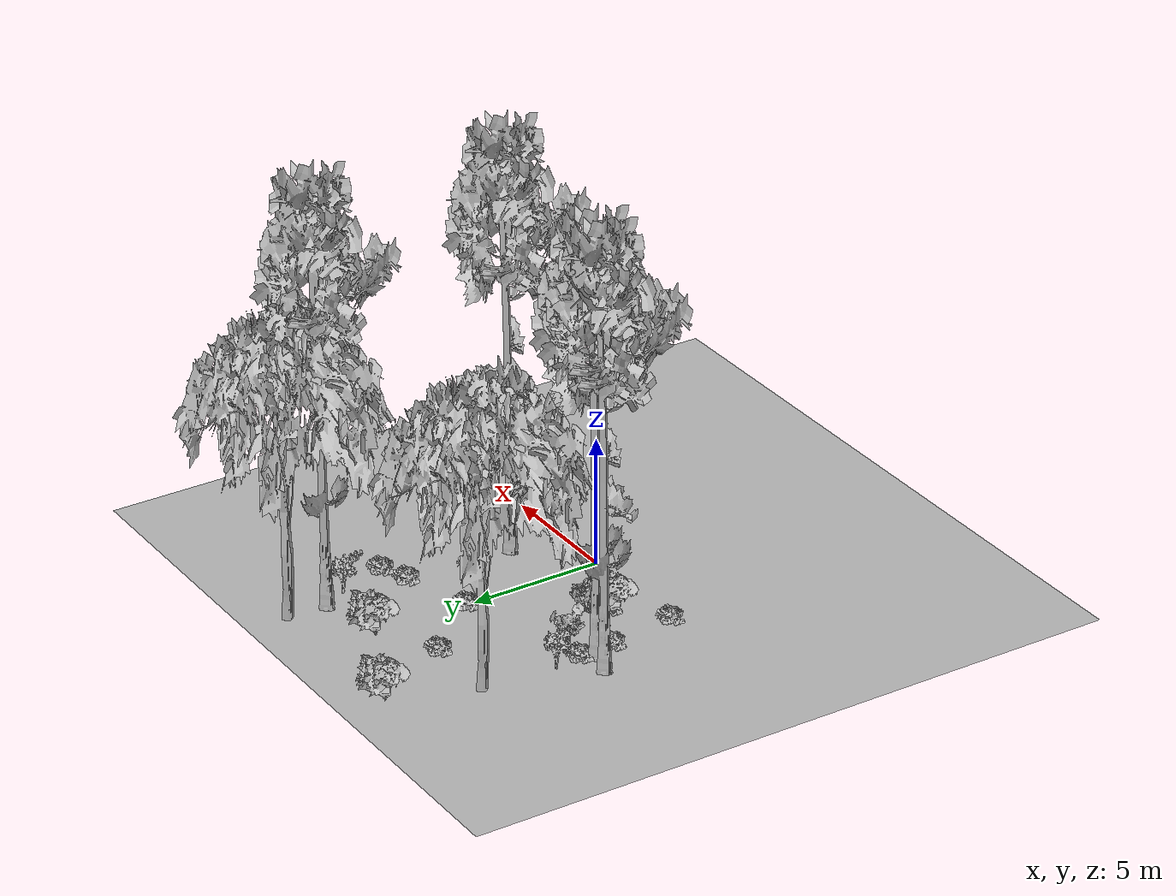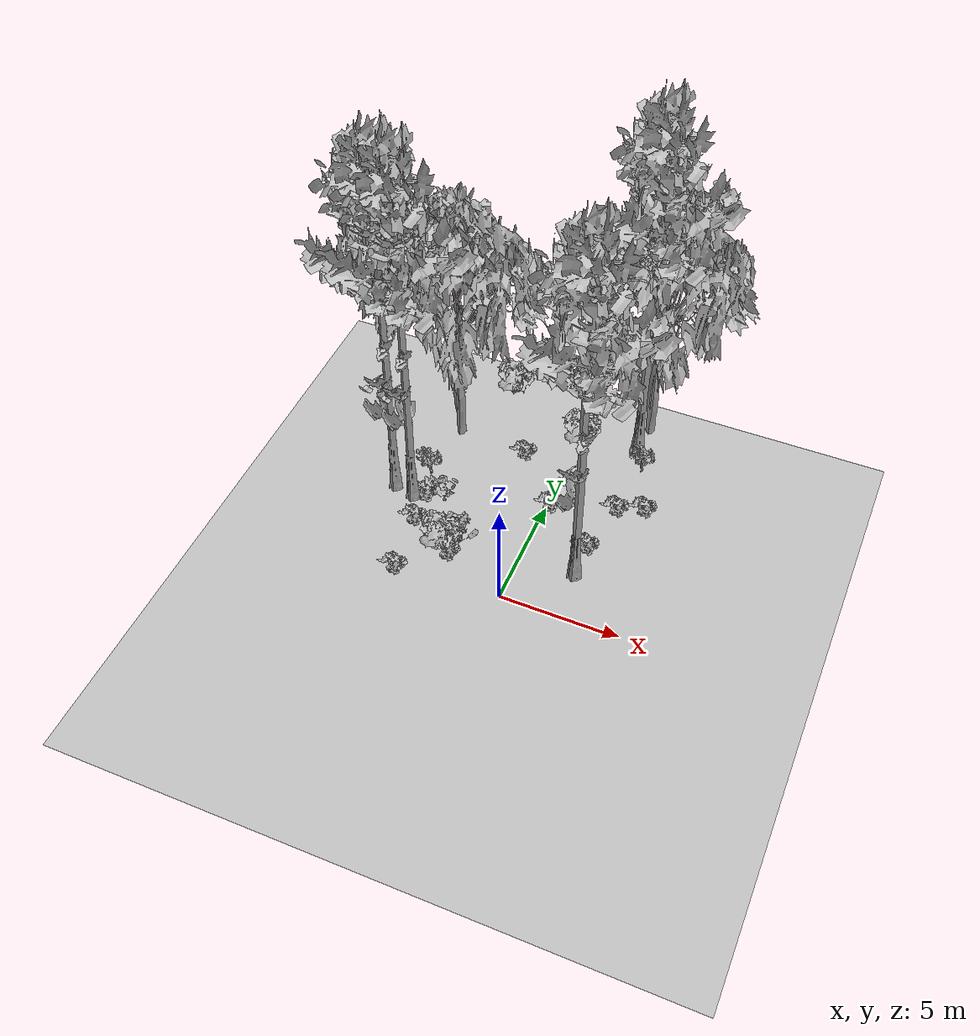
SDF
<sdf version="1.7">
 <world name="default">
  <model name="ground_plane">
   <static>1</static>
   <link name="link">
    <collision name="collision">
     <pose>-50 0 0 0 -0 0</pose>
     <geometry><plane><normal>0 0 1</normal><size>80 80</size></plane></geometry>
     <surface><contact><ode><min_depth>0.01</min_depth><max_vel>0</max_vel></ode></contact></surface>
    </collision>
    <visual name="grass">
     <cast_shadows>0</cast_shadows>
     <geometry>
      <mesh>
       <scale>0.46714285714285714 0.46714285714285714 0.1</scale>
       <uri>file://grass_plane/meshes/grass_plane.dae</uri>
      </mesh>
     </geometry>
    </visual>
   </link>
  </model>
  <model name="Tree 40">
   <static>1</static>
   <pose>2.4844575422796 9.515615759375045 0 1.57079 -0 0</pose>
   <link name="link">
    <collision name="collision">
     <geometry><mesh><scale>3.5 5 3.5</scale><uri>model://tree_9/meshes/tree_9.obj</uri></mesh></geometry>
    </collision>
    <visual name="visual">
     <geometry><mesh><scale>3.5 5 3.5</scale><uri>model://tree_9/meshes/tree_9.obj</uri></mesh></geometry>
    </visual>
   </link>
  </model>
  <model name="Tree 90">
   <static>1</static>
   <pose>-6.290884078868302 3.689185958182904 0 1.57079 -0 0</pose>
   <link name="link">
    <collision name="collision">
     <geometry><mesh><scale>3.5 5 3.5</scale><uri>model://tree_9/meshes/tree_9.obj</uri></mesh></geometry>
    </collision>
    <visual name="visual">
     <geometry><mesh><scale>3.5 5 3.5</scale><uri>model://tree_9/meshes/tree_9.obj</uri></mesh></geometry>
    </visual>
   </link>
  </model>
  <model name="Tree 482">
   <static>1</static>
   <pose>-5.161106772471058 7.755551841444529 0 1.57079 -0 0</pose>
   <link name="link">
    <collision name="collision">
     <geometry><mesh><scale>3.5 5 3.5</scale><uri>model://tree_2/meshes/tree_2.obj</uri></mesh></geometry>
    </collision>
    <visual name="visual">
     <geometry><mesh><scale>3.5 5 3.5</scale><uri>model://tree_2/meshes/tree_2.obj</uri></mesh></geometry>
    </visual>
   </link>
  </model>
  <model name="Tree 539">
   <static>1</static>
   <pose>-5.3809156772526805 3.4427276388208767 0 1.57079 -0 0</pose>
   <link name="link">
    <collision name="collision">
     <geometry><mesh><scale>3.5 5 3.5</scale><uri>model://tree_9/meshes/tree_9.obj</uri></mesh></geometry>
    </collision>
    <visual name="visual">
     <geometry><mesh><scale>3.5 5 3.5</scale><uri>model://tree_9/meshes/tree_9.obj</uri></mesh></geometry>
    </visual>
   </link>
  </model>
  <model name="Tree 546">
   <static>1</static>
   <pose>2.474630881451077 10.991028897416449 0 1.57079 -0 0</pose>
   <link name="link">
    <collision name="collision">
     <geometry><mesh><scale>3.5 5 3.5</scale><uri>model://tree_2/meshes/tree_2.obj</uri></mesh></geometry>
    </collision>
    <visual name="visual">
     <geometry><mesh><scale>3.5 5 3.5</scale><uri>model://tree_2/meshes/tree_2.obj</uri></mesh></geometry>
    </visual>
   </link>
  </model>
  <model name="Tree 608">
   <static>1</static>
   <pose>2.3728646627772676 2.099940196945873 0 1.57079 -0 0</pose>
   <link name="link">
    <collision name="collision">
     <geometry><mesh><scale>3.5 5 3.5</scale><uri>model://tree_9/meshes/tree_9.obj</uri></mesh></geometry>
    </collision>
    <visual name="visual">
     <geometry><mesh><scale>3.5 5 3.5</scale><uri>model://tree_9/meshes/tree_9.obj</uri></mesh></geometry>
    </visual>
   </link>
  </model>
  <model name="Bush 14">
   <static>1</static>
   <pose>-5.2411211255494905 4.965241052651763 0 1.57079 -0 0</pose>
   <link name="link">
    <collision name="collision">
     <geometry><mesh><scale>2 2 2</scale><uri>model://bush_5/meshes/bush_5.obj</uri></mesh></geometry>
     <surface><contact><collide_without_contact>false</collide_without_contact></contact></surface>
    </collision>
    <visual name="visual">
     <geometry><mesh><scale>2 2 2</scale><uri>model://bush_5/meshes/bush_5.obj</uri></mesh></geometry>
    </visual>
   </link>
  </model>
  <model name="Bush 37">
   <static>1</static>
   <pose>-3.286933439036808 1.3583532894752537 0 1.57079 -0 0</pose>
   <link name="link">
    <collision name="collision">
     <geometry><mesh><scale>2 2 2</scale><uri>model://bush_1/meshes/bush_1.obj</uri></mesh></geometry>
     <surface><contact><collide_without_contact>false</collide_without_contact></contact></surface>
    </collision>
    <visual name="visual">
     <geometry><mesh><scale>2 2 2</scale><uri>model://bush_1/meshes/bush_1.obj</uri></mesh></geometry>
    </visual>
   </link>
  </model>
  <model name="Bush 53">
   <static>1</static>
   <pose>-2.8935256871588706 1.3078239388190482 0 1.57079 -0 0</pose>
   <link name="link">
    <collision name="collision">
     <geometry><mesh><scale>2 2 2</scale><uri>model://bush_2/meshes/bush_2.obj</uri></mesh></geometry>
     <surface><contact><collide_without_contact>false</collide_without_contact></contact></surface>
    </collision>
    <visual name="visual">
     <geometry><mesh><scale>2 2 2</scale><uri>model://bush_2/meshes/bush_2.obj</uri></mesh></geometry>
    </visual>
   </link>
  </model>
  <model name="Bush 63">
   <static>1</static>
   <pose>-5.031527633110137 3.8559816114937533 0 1.57079 -0 0</pose>
   <link name="link">
    <collision name="collision">
     <geometry><mesh><scale>2 2 2</scale><uri>model://bush_2/meshes/bush_2.obj</uri></mesh></geometry>
     <surface><contact><collide_without_contact>false</collide_without_contact></contact></surface>
    </collision>
    <visual name="visual">
     <geometry><mesh><scale>2 2 2</scale><uri>model://bush_2/meshes/bush_2.obj</uri></mesh></geometry>
    </visual>
   </link>
  </model>
  <model name="Bush 73">
   <static>1</static>
   <pose>-2.076433955727495 7.695172075484926 0 1.57079 -0 0</pose>
   <link name="link">
    <collision name="collision">
     <geometry><mesh><scale>2 2 2</scale><uri>model://bush_2/meshes/bush_2.obj</uri></mesh></geometry>
     <surface><contact><collide_without_contact>false</collide_without_contact></contact></surface>
    </collision>
    <visual name="visual">
     <geometry><mesh><scale>2 2 2</scale><uri>model://bush_2/meshes/bush_2.obj</uri></mesh></geometry>
    </visual>
   </link>
  </model>
  <model name="Bush 229">
   <static>1</static>
   <pose>0.023140176509457433 5.317525833673436 0 1.57079 -0 0</pose>
   <link name="link">
    <collision name="collision">
     <geometry><mesh><scale>2 2 2</scale><uri>model://bush_2/meshes/bush_2.obj</uri></mesh></geometry>
     <surface><contact><collide_without_contact>false</collide_without_contact></contact></surface>
    </collision>
    <visual name="visual">
     <geometry><mesh><scale>2 2 2</scale><uri>model://bush_2/meshes/bush_2.obj</uri></mesh></geometry>
    </visual>
   </link>
  </model>
  <model name="Bush 266">
   <static>1</static>
   <pose>3.0391731649365497 8.551676089945943 0 1.57079 -0 0</pose>
   <link name="link">
    <collision name="collision">
     <geometry><mesh><scale>2 2 2</scale><uri>model://bush_5/meshes/bush_5.obj</uri></mesh></geometry>
     <surface><contact><collide_without_contact>false</collide_without_contact></contact></surface>
    </collision>
    <visual name="visual">
     <geometry><mesh><scale>2 2 2</scale><uri>model://bush_5/meshes/bush_5.obj</uri></mesh></geometry>
    </visual>
   </link>
  </model>
  <model name="Bush 305">
   <static>1</static>
   <pose>-3.8850200577254554 10.86221637598581 0 1.57079 -0 0</pose>
   <link name="link">
    <collision name="collision">
     <geometry><mesh><scale>2 2 2</scale><uri>model://bush_1/meshes/bush_1.obj</uri></mesh></geometry>
     <surface><contact><collide_without_contact>false</collide_without_contact></contact></surface>
    </collision>
    <visual name="visual">
     <geometry><mesh><scale>2 2 2</scale><uri>model://bush_1/meshes/bush_1.obj</uri></mesh></geometry>
    </visual>
   </link>
  </model>
  <model name="Bush 324">
   <static>1</static>
   <pose>3.7580181538478925 6.592805531840554 0 1.57079 -0 0</pose>
   <link name="link">
    <collision name="collision">
     <geometry><mesh><scale>2 2 2</scale><uri>model://bush_2/meshes/bush_2.obj</uri></mesh></geometry>
     <surface><contact><collide_without_contact>false</collide_without_contact></contact></surface>
    </collision>
    <visual name="visual">
     <geometry><mesh><scale>2 2 2</scale><uri>model://bush_2/meshes/bush_2.obj</uri></mesh></geometry>
    </visual>
   </link>
  </model>
  <model name="Bush 340">
   <static>1</static>
   <pose>-4.098744977065344 3.7667845198251513 0 1.57079 -0 0</pose>
   <link name="link">
    <collision name="collision">
     <geometry><mesh><scale>2 2 2</scale><uri>model://bush_0/meshes/bush_0.obj</uri></mesh></geometry>
     <surface><contact><collide_without_contact>false</collide_without_contact></contact></surface>
    </collision>
    <visual name="visual">
     <geometry><mesh><scale>2 2 2</scale><uri>model://bush_0/meshes/bush_0.obj</uri></mesh></geometry>
    </visual>
   </link>
  </model>
  <model name="Bush 355">
   <static>1</static>
   <pose>-0.009507841570012943 8.998760495747803 0 1.57079 -0 0</pose>
   <link name="link">
    <collision name="collision">
     <geometry><mesh><scale>2 2 2</scale><uri>model://bush_1/meshes/bush_1.obj</uri></mesh></geometry>
     <surface><contact><collide_without_contact>false</collide_without_contact></contact></surface>
    </collision>
    <visual name="visual">
     <geometry><mesh><scale>2 2 2</scale><uri>model://bush_1/meshes/bush_1.obj</uri></mesh></geometry>
    </visual>
   </link>
  </model>
  <model name="Bush 371">
   <static>1</static>
   <pose>2.664946718484437 6.1821479289911565 0 1.57079 -0 0</pose>
   <link name="link">
    <collision name="collision">
     <geometry><mesh><scale>2 2 2</scale><uri>model://bush_2/meshes/bush_2.obj</uri></mesh></geometry>
     <surface><contact><collide_without_contact>false</collide_without_contact></contact></surface>
    </collision>
    <visual name="visual">
     <geometry><mesh><scale>2 2 2</scale><uri>model://bush_2/meshes/bush_2.obj</uri></mesh></geometry>
    </visual>
   </link>
  </model>
  <model name="Bush 380">
   <static>1</static>
   <pose>-4.584703427215203 -0.15147377705105924 0 1.57079 -0 0</pose>
   <link name="link">
    <collision name="collision">
     <geometry><mesh><scale>2 2 2</scale><uri>model://bush_2/meshes/bush_2.obj</uri></mesh></geometry>
     <surface><contact><collide_without_contact>false</collide_without_contact></contact></surface>
    </collision>
    <visual name="visual">
     <geometry><mesh><scale>2 2 2</scale><uri>model://bush_2/meshes/bush_2.obj</uri></mesh></geometry>
    </visual>
   </link>
  </model>
  <model name="Bush 409">
   <static>1</static>
   <pose>-2.694491955533991 1.9798730554358457 0 1.57079 -0 0</pose>
   <link name="link">
    <collision name="collision">
     <geometry><mesh><scale>2 2 2</scale><uri>model://bush_4/meshes/bush_4.obj</uri></mesh></geometry>
     <surface><contact><collide_without_contact>false</collide_without_contact></contact></surface>
    </collision>
    <visual name="visual">
     <geometry><mesh><scale>2 2 2</scale><uri>model://bush_4/meshes/bush_4.obj</uri></mesh></geometry>
    </visual>
   </link>
  </model>
  <model name="Bush 447">
   <static>1</static>
   <pose>-4.933718664678125 2.4797182335903614 0 1.57079 -0 0</pose>
   <link name="link">
    <collision name="collision">
     <geometry><mesh><scale>2 2 2</scale><uri>model://bush_2/meshes/bush_2.obj</uri></mesh></geometry>
     <surface><contact><collide_without_contact>false</collide_without_contact></contact></surface>
    </collision>
    <visual name="visual">
     <geometry><mesh><scale>2 2 2</scale><uri>model://bush_2/meshes/bush_2.obj</uri></mesh></geometry>
    </visual>
   </link>
  </model>
  <model name="Bush 465">
   <static>1</static>
   <pose>2.2210297400506533 3.7881857130587377 0 1.57079 -0 0</pose>
   <link name="link">
    <collision name="collision">
     <geometry><mesh><scale>2 2 2</scale><uri>model://bush_2/meshes/bush_2.obj</uri></mesh></geometry>
     <surface><contact><collide_without_contact>false</collide_without_contact></contact></surface>
    </collision>
    <visual name="visual">
     <geometry><mesh><scale>2 2 2</scale><uri>model://bush_2/meshes/bush_2.obj</uri></mesh></geometry>
    </visual>
   </link>
  </model>
 </world>
</sdf>
